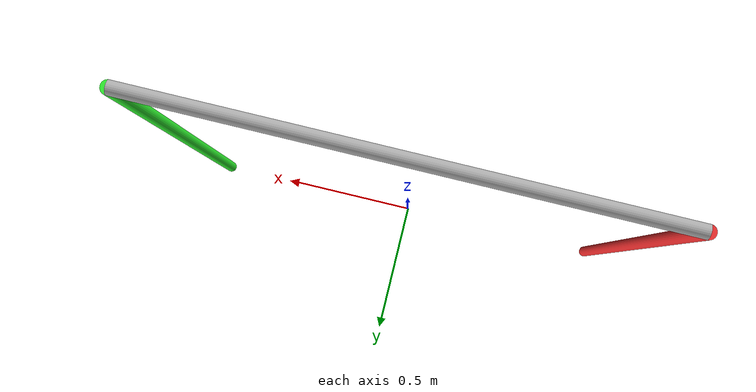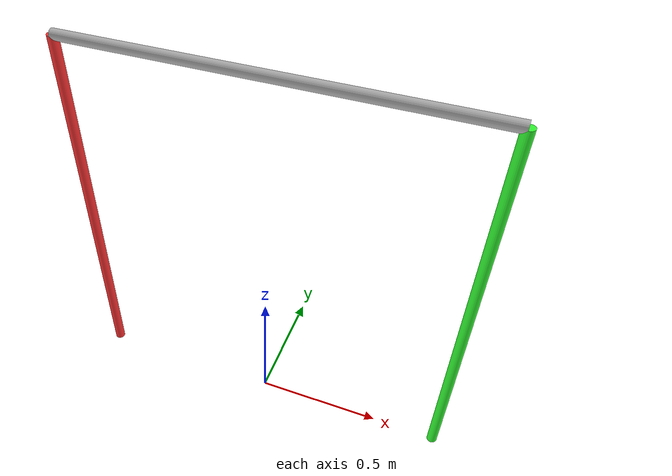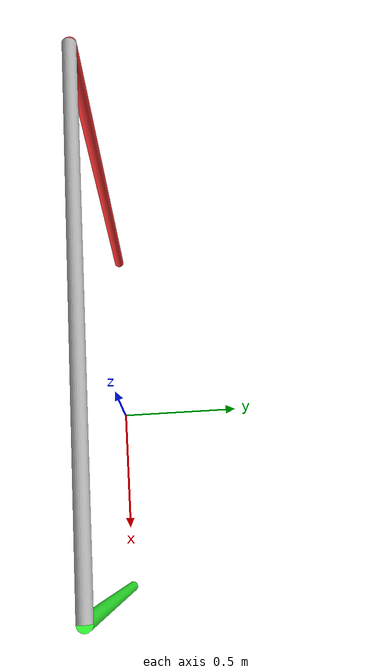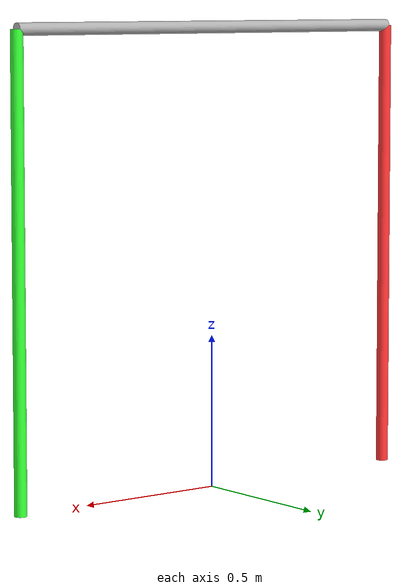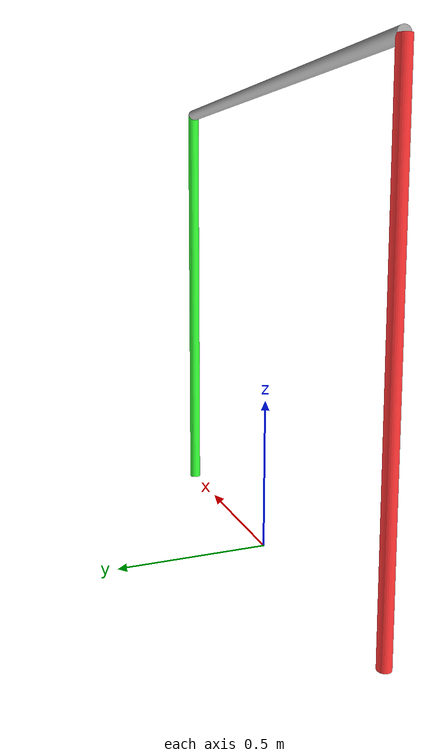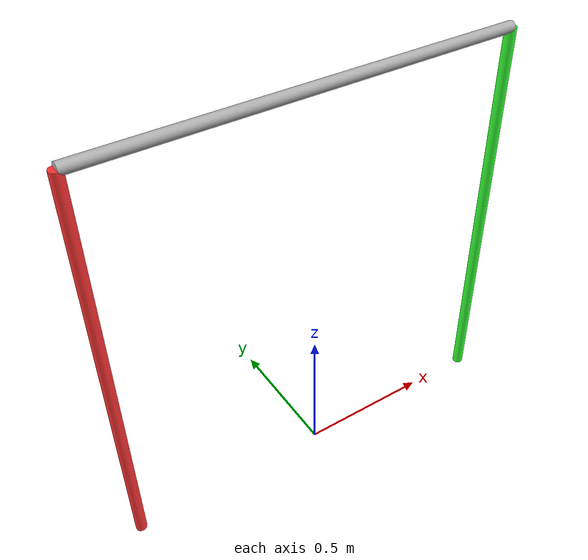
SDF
<?xml version='1.0'?>
<sdf version='1.7'>
  <model name='gate'>
    <static>true</static>

    <link name='left_post'>
      <pose>-0.75 0 0.75 0 0 0</pose>
      <visual name='post_visual'>
        <geometry>
          <cylinder>
            <radius>0.02</radius>
            <length>1.5</length>
          </cylinder>
        </geometry>
        <material>
          <ambient>0.8 0.1 0.1 1</ambient>
          <diffuse>1.0 0.2 0.2 1</diffuse>
          <specular>0.1 0.1 0.1 1</specular>
        </material>
      </visual>
      <collision name='post_collision'>
        <geometry>
          <cylinder>
            <radius>0.02</radius>
            <length>1.5</length>
          </cylinder>
        </geometry>
      </collision>
    </link>

    <link name='right_post'>
      <pose>0.75 0 0.75 0 0 0</pose>
      <visual name='post_visual'>
        <geometry>
          <cylinder>
            <radius>0.02</radius>
            <length>1.5</length>
          </cylinder>
        </geometry>
        <material>
          <ambient>0.1 0.8 0.1 1</ambient>
          <diffuse>0.2 1.0 0.2 1</diffuse>
          <specular>0.1 0.1 0.1 1</specular>
        </material>
      </visual>
      <collision name='post_collision'>
        <geometry>
          <cylinder>
            <radius>0.02</radius>
            <length>1.5</length>
          </cylinder>
        </geometry>
      </collision>
    </link>

    <link name='top_bar'>
      <pose>0 0 1.5 0 1.5707 0</pose>
      <visual name='bar_visual'>
        <geometry>
          <cylinder>
            <radius>0.02</radius>
            <length>1.5</length>
          </cylinder>
        </geometry>
        <material>
          <ambient>0.3 0.3 0.3 1</ambient>
          <diffuse>0.7 0.7 0.7 1</diffuse>
          <specular>0.1 0.1 0.1 1</specular>
        </material>
      </visual>
      <collision name='bar_collision'>
        <geometry>
          <cylinder>
            <radius>0.02</radius>
            <length>1.5</length>
          </cylinder>
        </geometry>
      </collision>
    </link>

    <joint name='left_post_joint' type='fixed'>
      <parent>top_bar</parent>
      <child>left_post</child>
    </joint>

    <joint name='right_post_joint' type='fixed'>
      <parent>top_bar</parent>
      <child>right_post</child>
    </joint>

  </model>
</sdf>
